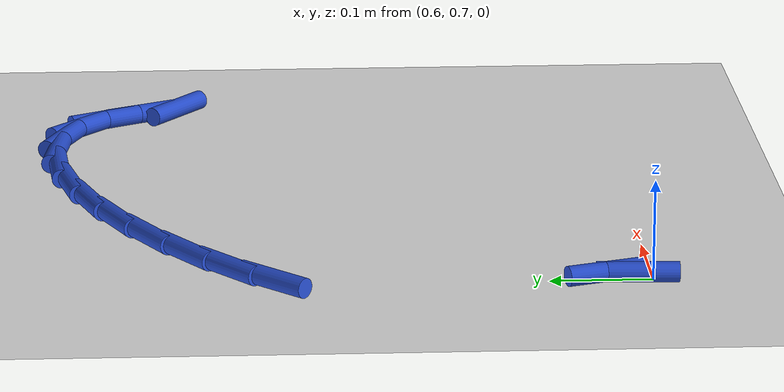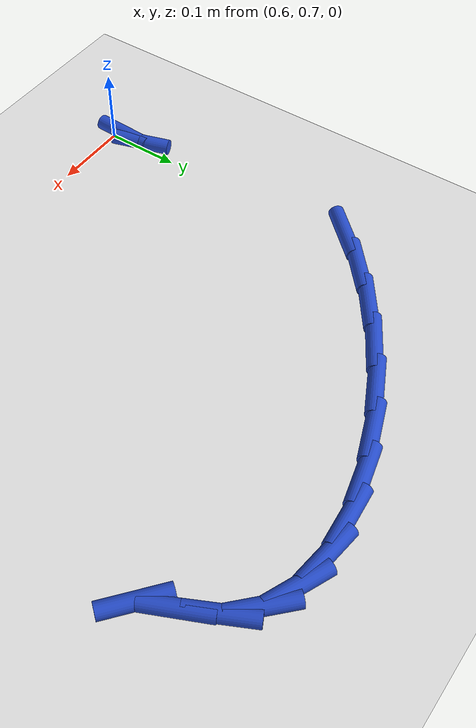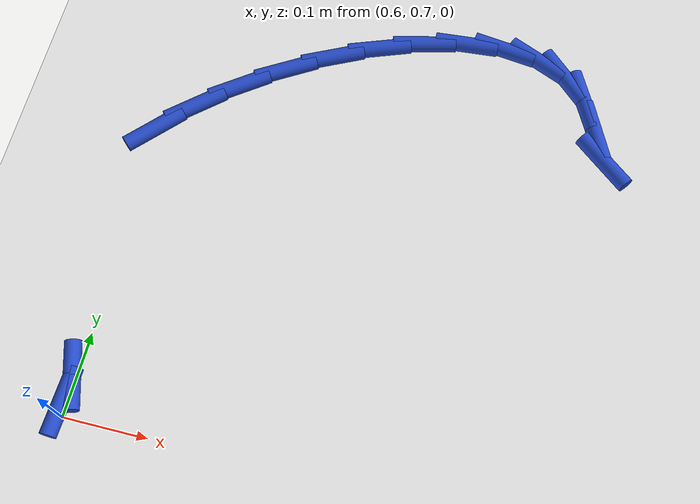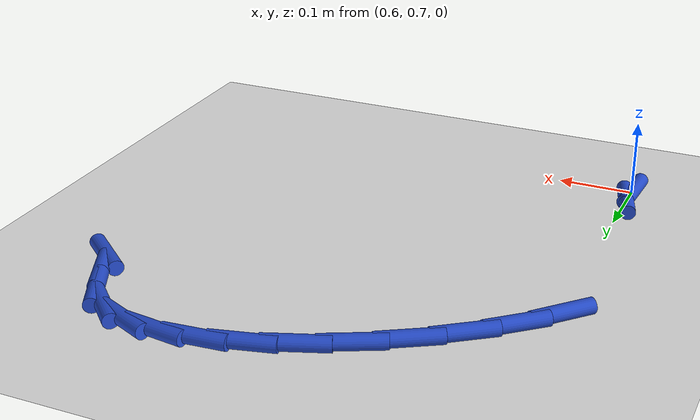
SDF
<sdf version="1.6">
 <world name="default">
  <model name="ground_plane">
   <static>1</static>
   <link name="link">
    <collision name="collision">
     <geometry><plane><normal>0 0 1</normal><size>100 100</size></plane></geometry>
     <surface><friction><ode><mu>100</mu><mu2>50</mu2></ode></friction></surface>
    </collision>
    <visual name="visual">
     <cast_shadows>0</cast_shadows>
     <geometry><plane><normal>0 0 1</normal><size>100 100</size></plane></geometry>
     <material>
      <script><uri>file://media/materials/scripts/gazebo.material</uri><name>Gazebo/WhiteGlow</name></script>
     </material>
    </visual>
   </link>
  </model>
  <model name="line">
   <link name="link_22">
    <pose>0.5958197380864433 0.7154823055109767 0.01 0 1.57 1.5245453806693094</pose>
    <collision name="collision">
     <geometry><cylinder><radius>0.01</radius><length>0.08</length></cylinder></geometry>
    </collision>
    <visual name="visual">
     <material>
      <script><name>Gazebo/Blue</name><uri>file://media/materials/scripts/gazebo.material</uri></script>
     </material>
     <geometry><cylinder><radius>0.01</radius><length>0.08</length></cylinder></geometry>
    </visual>
   </link>
   <link name="link_23">
    <pose>0.5972185471542948 0.7457046387140813 0.01 0 1.57 -1.2663125703326148</pose>
    <collision name="collision">
     <geometry><cylinder><radius>0.01</radius><length>0.08</length></cylinder></geometry>
    </collision>
    <visual name="visual">
     <material>
      <script><name>Gazebo/Blue</name><uri>file://media/materials/scripts/gazebo.material</uri></script>
     </material>
     <geometry><cylinder><radius>0.01</radius><length>0.08</length></cylinder></geometry>
    </visual>
   </link>
   <link name="link_31">
    <pose>0.5911379247251956 1.0650638862481587 0.01 0 1.57 0.820990334736912</pose>
    <collision name="collision">
     <geometry><cylinder><radius>0.01</radius><length>0.08</length></cylinder></geometry>
    </collision>
    <visual name="visual">
     <material>
      <script><name>Gazebo/Blue</name><uri>file://media/materials/scripts/gazebo.material</uri></script>
     </material>
     <geometry><cylinder><radius>0.01</radius><length>0.08</length></cylinder></geometry>
    </visual>
   </link>
   <link name="link_32">
    <pose>0.6307945249102553 1.1076488800061033 0.01 0 1.57 0.718344709605781</pose>
    <collision name="collision">
     <geometry><cylinder><radius>0.01</radius><length>0.08</length></cylinder></geometry>
    </collision>
    <visual name="visual">
     <material>
      <script><name>Gazebo/Blue</name><uri>file://media/materials/scripts/gazebo.material</uri></script>
     </material>
     <geometry><cylinder><radius>0.01</radius><length>0.08</length></cylinder></geometry>
    </visual>
   </link>
   <link name="link_33">
    <pose>0.6766418562474495 1.1477260277612042 0.01 0 1.57 0.6273810549147172</pose>
    <collision name="collision">
     <geometry><cylinder><radius>0.01</radius><length>0.08</length></cylinder></geometry>
    </collision>
    <visual name="visual">
     <material>
      <script><name>Gazebo/Blue</name><uri>file://media/materials/scripts/gazebo.material</uri></script>
     </material>
     <geometry><cylinder><radius>0.01</radius><length>0.08</length></cylinder></geometry>
    </visual>
   </link>
   <link name="link_34">
    <pose>0.727063393124515 1.1842872472048493 0.01 0 1.57 0.5405528134266864</pose>
    <collision name="collision">
     <geometry><cylinder><radius>0.01</radius><length>0.08</length></cylinder></geometry>
    </collision>
    <visual name="visual">
     <material>
      <script><name>Gazebo/Blue</name><uri>file://media/materials/scripts/gazebo.material</uri></script>
     </material>
     <geometry><cylinder><radius>0.01</radius><length>0.08</length></cylinder></geometry>
    </visual>
   </link>
   <link name="link_35">
    <pose>0.7804426099291873 1.2163244560284252 0.01 0 1.57 0.4510687106434794</pose>
    <collision name="collision">
     <geometry><cylinder><radius>0.01</radius><length>0.08</length></cylinder></geometry>
    </collision>
    <visual name="visual">
     <material>
      <script><name>Gazebo/Blue</name><uri>file://media/materials/scripts/gazebo.material</uri></script>
     </material>
     <geometry><cylinder><radius>0.01</radius><length>0.08</length></cylinder></geometry>
    </visual>
   </link>
   <link name="link_36">
    <pose>0.8351629810492044 1.2428295719233193 0.01 0 1.57 0.3514735164525945</pose>
    <collision name="collision">
     <geometry><cylinder><radius>0.01</radius><length>0.08</length></cylinder></geometry>
    </collision>
    <visual name="visual">
     <material>
      <script><name>Gazebo/Blue</name><uri>file://media/materials/scripts/gazebo.material</uri></script>
     </material>
     <geometry><cylinder><radius>0.01</radius><length>0.08</length></cylinder></geometry>
    </visual>
   </link>
   <link name="link_37">
    <pose>0.889607980872302 1.2627945125809186 0.01 0 1.57 0.23201446020576075</pose>
    <collision name="collision">
     <geometry><cylinder><radius>0.01</radius><length>0.08</length></cylinder></geometry>
    </collision>
    <visual name="visual">
     <material>
      <script><name>Gazebo/Blue</name><uri>file://media/materials/scripts/gazebo.material</uri></script>
     </material>
     <geometry><cylinder><radius>0.01</radius><length>0.08</length></cylinder></geometry>
    </visual>
   </link>
   <link name="link_38">
    <pose>0.942161083786217 1.2752111956926102 0.01 0 1.57 0.07854879735542894</pose>
    <collision name="collision">
     <geometry><cylinder><radius>0.01</radius><length>0.08</length></cylinder></geometry>
    </collision>
    <visual name="visual">
     <material>
      <script><name>Gazebo/Blue</name><uri>file://media/materials/scripts/gazebo.material</uri></script>
     </material>
     <geometry><cylinder><radius>0.01</radius><length>0.08</length></cylinder></geometry>
    </visual>
   </link>
   <link name="link_39">
    <pose>0.9912057641786863 1.279071538949782 0.01 0 1.57 -0.12915216185020603</pose>
    <collision name="collision">
     <geometry><cylinder><radius>0.01</radius><length>0.08</length></cylinder></geometry>
    </collision>
    <visual name="visual">
     <material>
      <script><name>Gazebo/Blue</name><uri>file://media/materials/scripts/gazebo.material</uri></script>
     </material>
     <geometry><cylinder><radius>0.01</radius><length>0.08</length></cylinder></geometry>
    </visual>
   </link>
   <link name="link_40">
    <pose>1.0351254964374463 1.273367460043821 0.01 0 1.57 -0.4126609035056373</pose>
    <collision name="collision">
     <geometry><cylinder><radius>0.01</radius><length>0.08</length></cylinder></geometry>
    </collision>
    <visual name="visual">
     <material>
      <script><name>Gazebo/Blue</name><uri>file://media/materials/scripts/gazebo.material</uri></script>
     </material>
     <geometry><cylinder><radius>0.01</radius><length>0.08</length></cylinder></geometry>
    </visual>
   </link>
   <link name="link_41">
    <pose>1.0723037549502337 1.257090876666114 0.01 0 1.57 -0.7684073377915633</pose>
    <collision name="collision">
     <geometry><cylinder><radius>0.01</radius><length>0.08</length></cylinder></geometry>
    </collision>
    <visual name="visual">
     <material>
      <script><name>Gazebo/Blue</name><uri>file://media/materials/scripts/gazebo.material</uri></script>
     </material>
     <geometry><cylinder><radius>0.01</radius><length>0.08</length></cylinder></geometry>
    </visual>
   </link>
   <link name="link_42">
    <pose>1.1011240141047849 1.2292337065080488 0.01 0 1.57 -1.1052285526028094</pose>
    <collision name="collision">
     <geometry><cylinder><radius>0.01</radius><length>0.08</length></cylinder></geometry>
    </collision>
    <visual name="visual">
     <material>
      <script><name>Gazebo/Blue</name><uri>file://media/materials/scripts/gazebo.material</uri></script>
     </material>
     <geometry><cylinder><radius>0.01</radius><length>0.08</length></cylinder></geometry>
    </visual>
   </link>
   <link name="link_43">
    <pose>1.120776088716246 1.190117511856501 0.01 0 1.57 -1.1345440950313195</pose>
    <collision name="collision">
     <geometry><cylinder><radius>0.01</radius><length>0.08</length></cylinder></geometry>
    </collision>
    <visual name="visual">
     <material>
      <script><name>Gazebo/Blue</name><uri>file://media/materials/scripts/gazebo.material</uri></script>
     </material>
     <geometry><cylinder><radius>0.01</radius><length>0.08</length></cylinder></geometry>
    </visual>
   </link>
   <link name="link_44">
    <pose>1.1381737027840668 1.1528004062209873 0.01 0 1.57 -0.6953278757903961</pose>
    <collision name="collision">
     <geometry><cylinder><radius>0.01</radius><length>0.08</length></cylinder></geometry>
    </collision>
    <visual name="visual">
     <material>
      <script><name>Gazebo/Blue</name><uri>file://media/materials/scripts/gazebo.material</uri></script>
     </material>
     <geometry><cylinder><radius>0.01</radius><length>0.08</length></cylinder></geometry>
    </visual>
   </link>
  </model>
 </world>
</sdf>
